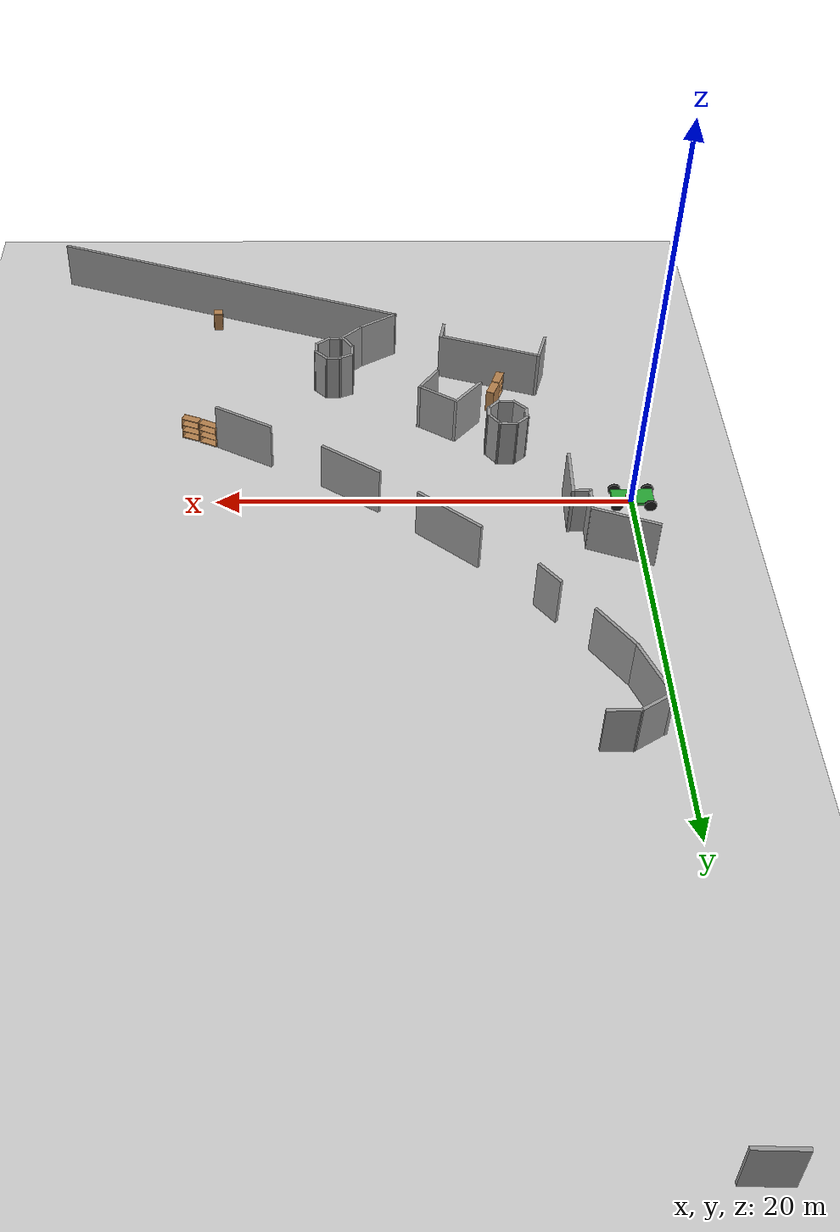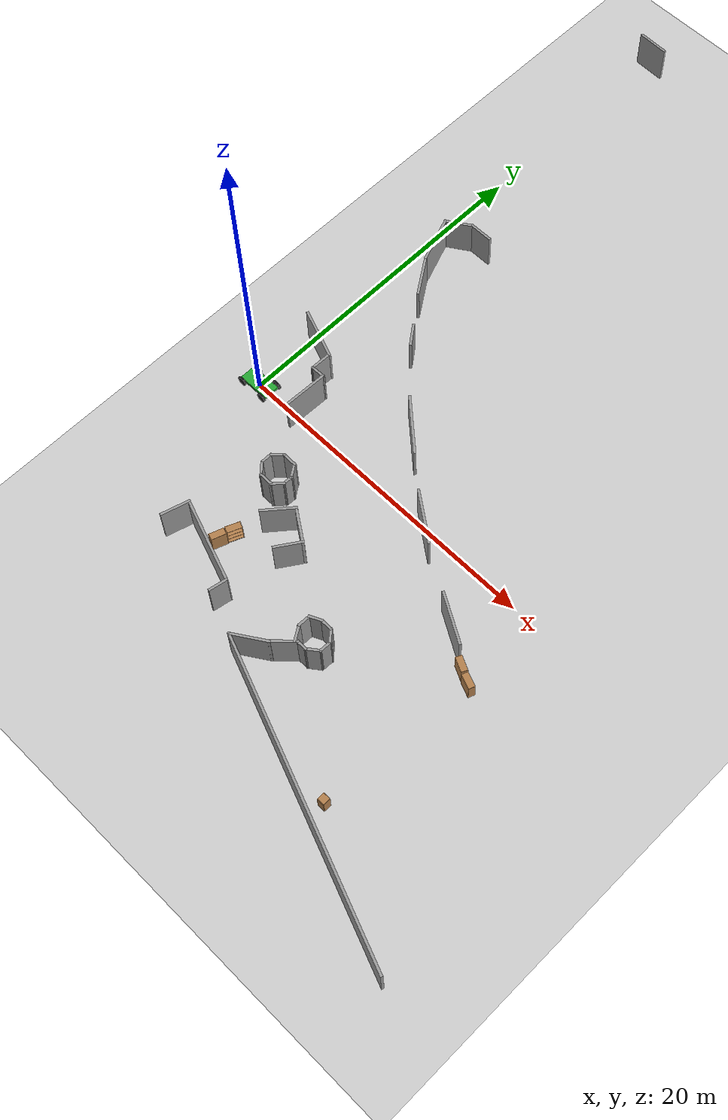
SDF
<sdf version="1.6">
 <world name="default">
  <model name="ground_plane">
   <static>1</static>
   <link name="link">
    <collision name="collision">
     <geometry><plane><normal>0 0 1</normal><size>100 100</size></plane></geometry>
     <surface><friction><ode><mu>100</mu><mu2>50</mu2></ode></friction></surface>
    </collision>
    <visual name="visual">
     <cast_shadows>0</cast_shadows>
     <geometry><plane><normal>0 0 1</normal><size>100 100</size></plane></geometry>
     <material>
      <script><uri>file://media/materials/scripts/gazebo.material</uri><name>Gazebo/Grey</name></script>
     </material>
    </visual>
   </link>
  </model>
  <model name="mall_new_reduce_size">
   <pose>-6.8092 7.5529 0 0 -0 0</pose>
   <link name="Wall_126">
    <collision name="Wall_126_Collision">
     <geometry><box><size>1.5 0.15 2.5</size></box></geometry>
     <pose>0 0 1.25 0 -0 0</pose>
    </collision>
    <visual name="Wall_126_Visual">
     <pose>0 0 1.25 0 -0 0</pose>
     <geometry><box><size>1.5 0.15 2.5</size></box></geometry>
     <material>
      <script><uri>file://media/materials/scripts/gazebo.material</uri><name>Gazebo/Grey</name></script>
      <ambient>1 1 1 1</ambient>
     </material>
     <meta><layer>0</layer></meta>
    </visual>
    <pose>9.56035 7.86068 0 0 -0 3.14159</pose>
   </link>
   <link name="Wall_127">
    <collision name="Wall_127_Collision">
     <geometry><box><size>1.79669 0.15 2.5</size></box></geometry>
     <pose>0 0 1.25 0 -0 0</pose>
    </collision>
    <visual name="Wall_127_Visual">
     <pose>0 0 1.25 0 -0 0</pose>
     <geometry><box><size>1.79669 0.15 2.5</size></box></geometry>
     <material>
      <script><uri>file://media/materials/scripts/gazebo.material</uri><name>Gazebo/Grey</name></script>
      <ambient>1 1 1 1</ambient>
     </material>
     <meta><layer>0</layer></meta>
    </visual>
    <pose>8.19253 7.41582 0 0 -0 -2.57079</pose>
   </link>
   <link name="Wall_128">
    <collision name="Wall_128_Collision">
     <geometry><box><size>3.04987 0.15 2.5</size></box></geometry>
     <pose>0 0 1.25 0 -0 0</pose>
    </collision>
    <visual name="Wall_128_Visual">
     <pose>0 0 1.25 0 -0 0</pose>
     <geometry><box><size>3.04987 0.15 2.5</size></box></geometry>
     <material>
      <script><uri>file://media/materials/scripts/gazebo.material</uri><name>Gazebo/Grey</name></script>
      <ambient>1 1 1 1</ambient>
     </material>
     <meta><layer>0</layer></meta>
    </visual>
    <pose>8.01735 5.63901 0 0 -0 -1.20574</pose>
   </link>
   <link name="Wall_129">
    <collision name="Wall_129_Collision">
     <geometry><box><size>2.67124 0.15 2.5</size></box></geometry>
     <pose>0 0 1.25 0 -0 0</pose>
    </collision>
    <visual name="Wall_129_Visual">
     <pose>0 0 1.25 0 -0 0</pose>
     <geometry><box><size>2.67124 0.15 2.5</size></box></geometry>
     <material>
      <script><uri>file://media/materials/scripts/gazebo.material</uri><name>Gazebo/Grey</name></script>
      <ambient>1 1 1 1</ambient>
     </material>
     <meta><layer>0</layer></meta>
    </visual>
    <pose>9.25128 3.23607 0 0 -0 -0.966457</pose>
   </link>
   <link name="Wall_134">
    <collision name="Wall_134_Collision">
     <geometry><box><size>1.4429 0.15 2.5</size></box></geometry>
     <pose>0 0 1.25 0 -0 0</pose>
    </collision>
    <visual name="Wall_134_Visual">
     <pose>0 0 1.25 0 -0 0</pose>
     <geometry><box><size>1.4429 0.15 2.5</size></box></geometry>
     <material>
      <script><uri>file://media/materials/scripts/gazebo.material</uri><name>Gazebo/Grey</name></script>
      <ambient>1 1 1 1</ambient>
     </material>
     <meta><layer>0</layer></meta>
    </visual>
    <pose>11.7178 -0.065856 0 0 -0 -0.919284</pose>
   </link>
   <link name="Wall_137">
    <collision name="Wall_137_Collision">
     <geometry><box><size>3.68143 0.15 2.5</size></box></geometry>
     <pose>0 0 1.25 0 -0 0</pose>
    </collision>
    <visual name="Wall_137_Visual">
     <pose>0 0 1.25 0 -0 0</pose>
     <geometry><box><size>3.68143 0.15 2.5</size></box></geometry>
     <material>
      <script><uri>file://media/materials/scripts/gazebo.material</uri><name>Gazebo/Grey</name></script>
      <ambient>1 1 1 1</ambient>
     </material>
     <meta><layer>0</layer></meta>
    </visual>
    <pose>15.8732 -4.24673 0 0 -0 -0.713439</pose>
   </link>
   <link name="Wall_140">
    <collision name="Wall_140_Collision">
     <geometry><box><size>3.35827 0.15 2.5</size></box></geometry>
     <pose>0 0 1.25 0 -0 0</pose>
    </collision>
    <visual name="Wall_140_Visual">
     <pose>0 0 1.25 0 -0 0</pose>
     <geometry><box><size>3.35827 0.15 2.5</size></box></geometry>
     <material>
      <script><uri>file://media/materials/scripts/gazebo.material</uri><name>Gazebo/Grey</name></script>
      <ambient>1 1 1 1</ambient>
     </material>
     <meta><layer>0</layer></meta>
    </visual>
    <pose>20.3327 -7.86303 0 0 -0 -0.619292</pose>
   </link>
   <link name="Wall_143">
    <collision name="Wall_143_Collision">
     <geometry><box><size>3.17972 0.15 2.5</size></box></geometry>
     <pose>0 0 1.25 0 -0 0</pose>
    </collision>
    <visual name="Wall_143_Visual">
     <pose>0 0 1.25 0 -0 0</pose>
     <geometry><box><size>3.17972 0.15 2.5</size></box></geometry>
     <material>
      <script><uri>file://media/materials/scripts/gazebo.material</uri><name>Gazebo/Grey</name></script>
      <ambient>1 1 1 1</ambient>
     </material>
     <meta><layer>0</layer></meta>
    </visual>
    <pose>25.5439 -11.078 0 0 -0 -0.516247</pose>
   </link>
   <link name="Wall_205">
    <collision name="Wall_205_Collision">
     <geometry><box><size>19.4256 0.15 2.5</size></box></geometry>
     <pose>0 0 1.25 0 -0 0</pose>
    </collision>
    <visual name="Wall_205_Visual">
     <pose>0 0 1.25 0 -0 0</pose>
     <geometry><box><size>19.4256 0.15 2.5</size></box></geometry>
     <material>
      <script><uri>file://media/materials/scripts/gazebo.material</uri><name>Gazebo/Grey</name></script>
      <ambient>1 1 1 1</ambient>
     </material>
     <meta><layer>0</layer></meta>
    </visual>
    <pose>26.9482 -23.2 0 0 -0 2.78246</pose>
   </link>
   <link name="Wall_207">
    <collision name="Wall_207_Collision">
     <geometry><box><size>2.2822 0.15 2.5</size></box></geometry>
     <pose>0 0 1.25 0 -0 0</pose>
    </collision>
    <visual name="Wall_207_Visual">
     <pose>0 0 1.25 0 -0 0</pose>
     <geometry><box><size>2.2822 0.15 2.5</size></box></geometry>
     <material>
      <script><uri>file://media/materials/scripts/gazebo.material</uri><name>Gazebo/Grey</name></script>
      <ambient>1 1 1 1</ambient>
     </material>
     <meta><layer>0</layer></meta>
    </visual>
    <pose>18.8386 -19.2246 0 0 -0 0.567895</pose>
   </link>
   <link name="Wall_208">
    <collision name="Wall_208_Collision">
     <geometry><box><size>1.61268 0.15 2.5</size></box></geometry>
     <pose>0 0 1.25 0 -0 0</pose>
    </collision>
    <visual name="Wall_208_Visual">
     <pose>0 0 1.25 0 -0 0</pose>
     <geometry><box><size>1.61268 0.15 2.5</size></box></geometry>
     <material>
      <script><uri>file://media/materials/scripts/gazebo.material</uri><name>Gazebo/Grey</name></script>
      <ambient>1 1 1 1</ambient>
     </material>
     <meta><layer>0</layer></meta>
    </visual>
    <pose>20.2619 -18.127 0 0 -0 0.770921</pose>
   </link>
   <link name="Wall_211">
    <collision name="Wall_211_Collision">
     <geometry><box><size>0.75 0.15 2.5</size></box></geometry>
     <pose>0 0 1.25 0 -0 0</pose>
    </collision>
    <visual name="Wall_211_Visual">
     <pose>0 0 1.25 0 -0 0</pose>
     <geometry><box><size>0.75 0.15 2.5</size></box></geometry>
     <material>
      <script><uri>file://media/materials/scripts/gazebo.material</uri><name>Gazebo/Grey</name></script>
      <ambient>1 1 1 1</ambient>
     </material>
     <meta><layer>0</layer></meta>
    </visual>
    <pose>21.0865 -17.6175 0 0 -0 0</pose>
   </link>
   <link name="Wall_212">
    <collision name="Wall_212_Collision">
     <geometry><box><size>0.928514 0.15 2.5</size></box></geometry>
     <pose>0 0 1.25 0 -0 0</pose>
    </collision>
    <visual name="Wall_212_Visual">
     <pose>0 0 1.25 0 -0 0</pose>
     <geometry><box><size>0.928514 0.15 2.5</size></box></geometry>
     <material>
      <script><uri>file://media/materials/scripts/gazebo.material</uri><name>Gazebo/Grey</name></script>
      <ambient>1 1 1 1</ambient>
     </material>
     <meta><layer>0</layer></meta>
    </visual>
    <pose>21.6967 -17.3823 0 0 -0 0.648482</pose>
   </link>
   <link name="Wall_213">
    <collision name="Wall_213_Collision">
     <geometry><box><size>0.794621 0.15 2.5</size></box></geometry>
     <pose>0 0 1.25 0 -0 0</pose>
    </collision>
    <visual name="Wall_213_Visual">
     <pose>0 0 1.25 0 -0 0</pose>
     <geometry><box><size>0.794621 0.15 2.5</size></box></geometry>
     <material>
      <script><uri>file://media/materials/scripts/gazebo.material</uri><name>Gazebo/Grey</name></script>
      <ambient>1 1 1 1</ambient>
     </material>
     <meta><layer>0</layer></meta>
    </visual>
    <pose>22.0259 -16.8252 0 0 -0 1.53167</pose>
   </link>
   <link name="Wall_214">
    <collision name="Wall_214_Collision">
     <geometry><box><size>0.927153 0.15 2.5</size></box></geometry>
     <pose>0 0 1.25 0 -0 0</pose>
    </collision>
    <visual name="Wall_214_Visual">
     <pose>0 0 1.25 0 -0 0</pose>
     <geometry><box><size>0.927153 0.15 2.5</size></box></geometry>
     <material>
      <script><uri>file://media/materials/scripts/gazebo.material</uri><name>Gazebo/Grey</name></script>
      <ambient>1 1 1 1</ambient>
     </material>
     <meta><layer>0</layer></meta>
    </visual>
    <pose>21.7755 -16.2107 0 0 -0 2.314</pose>
   </link>
   <link name="Wall_215">
    <collision name="Wall_215_Collision">
     <geometry><box><size>0.819343 0.15 2.5</size></box></geometry>
     <pose>0 0 1.25 0 -0 0</pose>
    </collision>
    <visual name="Wall_215_Visual">
     <pose>0 0 1.25 0 -0 0</pose>
     <geometry><box><size>0.819343 0.15 2.5</size></box></geometry>
     <material>
      <script><uri>file://media/materials/scripts/gazebo.material</uri><name>Gazebo/Grey</name></script>
      <ambient>1 1 1 1</ambient>
     </material>
     <meta><layer>0</layer></meta>
    </visual>
    <pose>21.1716 -15.9246 0 0 -0 3.14159</pose>
   </link>
   <link name="Wall_216">
    <collision name="Wall_216_Collision">
     <geometry><box><size>0.843381 0.15 2.5</size></box></geometry>
     <pose>0 0 1.25 0 -0 0</pose>
    </collision>
    <visual name="Wall_216_Visual">
     <pose>0 0 1.25 0 -0 0</pose>
     <geometry><box><size>0.843381 0.15 2.5</size></box></geometry>
     <material>
      <script><uri>file://media/materials/scripts/gazebo.material</uri><name>Gazebo/Grey</name></script>
      <ambient>1 1 1 1</ambient>
     </material>
     <meta><layer>0</layer></meta>
    </visual>
    <pose>20.5177 -16.0737 0 0 -0 -2.69705</pose>
   </link>
   <link name="Wall_217">
    <collision name="Wall_217_Collision">
     <geometry><box><size>0.856005 0.15 2.5</size></box></geometry>
     <pose>0 0 1.25 0 -0 0</pose>
    </collision>
    <visual name="Wall_217_Visual">
     <pose>0 0 1.25 0 -0 0</pose>
     <geometry><box><size>0.856005 0.15 2.5</size></box></geometry>
     <material>
      <script><uri>file://media/materials/scripts/gazebo.material</uri><name>Gazebo/Grey</name></script>
      <ambient>1 1 1 1</ambient>
     </material>
     <meta><layer>0</layer></meta>
    </visual>
    <pose>20.1932 -16.5819 0 0 -0 -1.60325</pose>
   </link>
   <link name="Wall_218">
    <collision name="Wall_218_Collision">
     <geometry><box><size>1.06985 0.15 2.5</size></box></geometry>
     <pose>0 0 1.25 0 -0 0</pose>
    </collision>
    <visual name="Wall_218_Visual">
     <pose>0 0 1.25 0 -0 0</pose>
     <geometry><box><size>1.06985 0.15 2.5</size></box></geometry>
     <material>
      <script><uri>file://media/materials/scripts/gazebo.material</uri><name>Gazebo/Grey</name></script>
      <ambient>1 1 1 1</ambient>
     </material>
     <meta><layer>0</layer></meta>
    </visual>
    <pose>20.4263 -17.318 0 0 -0 -1.01029</pose>
   </link>
   <link name="Wall_221">
    <collision name="Wall_221_Collision">
     <geometry><box><size>1.80269 0.15 2.5</size></box></geometry>
     <pose>0 0 1.25 0 -0 0</pose>
    </collision>
    <visual name="Wall_221_Visual">
     <pose>0 0 1.25 0 -0 0</pose>
     <geometry><box><size>1.80269 0.15 2.5</size></box></geometry>
     <material>
      <script><uri>file://media/materials/scripts/gazebo.material</uri><name>Gazebo/Grey</name></script>
      <ambient>1 1 1 1</ambient>
     </material>
     <meta><layer>0</layer></meta>
    </visual>
    <pose>10.4346 -16.8787 0 0 -0 1.2841</pose>
   </link>
   <link name="Wall_222">
    <collision name="Wall_222_Collision">
     <geometry><box><size>5.33695 0.15 2.5</size></box></geometry>
     <pose>0 0 1.25 0 -0 0</pose>
    </collision>
    <visual name="Wall_222_Visual">
     <pose>0 0 1.25 0 -0 0</pose>
     <geometry><box><size>5.33695 0.15 2.5</size></box></geometry>
     <material>
      <script><uri>file://media/materials/scripts/gazebo.material</uri><name>Gazebo/Grey</name></script>
      <ambient>1 1 1 1</ambient>
     </material>
     <meta><layer>0</layer></meta>
    </visual>
    <pose>13.1136 -16.9614 0 0 -0 -0.339721</pose>
   </link>
   <link name="Wall_223">
    <collision name="Wall_223_Collision">
     <geometry><box><size>1.17859 0.15 2.5</size></box></geometry>
     <pose>0 0 1.25 0 -0 0</pose>
    </collision>
    <visual name="Wall_223_Visual">
     <pose>0 0 1.25 0 -0 0</pose>
     <geometry><box><size>1.17859 0.15 2.5</size></box></geometry>
     <material>
      <script><uri>file://media/materials/scripts/gazebo.material</uri><name>Gazebo/Grey</name></script>
      <ambient>1 1 1 1</ambient>
     </material>
     <meta><layer>0</layer></meta>
    </visual>
    <pose>15.4636 -18.342 0 0 -0 -1.7571</pose>
   </link>
   <link name="Wall_226">
    <collision name="Wall_226_Collision">
     <geometry><box><size>2.09323 0.15 2.5</size></box></geometry>
     <pose>0 0 1.25 0 -0 0</pose>
    </collision>
    <visual name="Wall_226_Visual">
     <pose>0 0 1.25 0 -0 0</pose>
     <geometry><box><size>2.09323 0.15 2.5</size></box></geometry>
     <material>
      <script><uri>file://media/materials/scripts/gazebo.material</uri><name>Gazebo/Grey</name></script>
      <ambient>1 1 1 1</ambient>
     </material>
     <meta><layer>0</layer></meta>
    </visual>
    <pose>14.4531 -13.0477 0 0 -0 0.87023</pose>
   </link>
   <link name="Wall_227">
    <collision name="Wall_227_Collision">
     <geometry><box><size>2.25142 0.15 2.5</size></box></geometry>
     <pose>0 0 1.25 0 -0 0</pose>
    </collision>
    <visual name="Wall_227_Visual">
     <pose>0 0 1.25 0 -0 0</pose>
     <geometry><box><size>2.25142 0.15 2.5</size></box></geometry>
     <material>
      <script><uri>file://media/materials/scripts/gazebo.material</uri><name>Gazebo/Grey</name></script>
      <ambient>1 1 1 1</ambient>
     </material>
     <meta><layer>0</layer></meta>
    </visual>
    <pose>15.9526 -12.9004 0 0 -0 -0.589881</pose>
   </link>
   <link name="Wall_228">
    <collision name="Wall_228_Collision">
     <geometry><box><size>1.74942 0.15 2.5</size></box></geometry>
     <pose>0 0 1.25 0 -0 0</pose>
    </collision>
    <visual name="Wall_228_Visual">
     <pose>0 0 1.25 0 -0 0</pose>
     <geometry><box><size>1.74942 0.15 2.5</size></box></geometry>
     <material>
      <script><uri>file://media/materials/scripts/gazebo.material</uri><name>Gazebo/Grey</name></script>
      <ambient>1 1 1 1</ambient>
     </material>
     <meta><layer>0</layer></meta>
    </visual>
    <pose>16.3774 -14.136 0 0 -0 -2.166</pose>
   </link>
   <link name="Wall_232">
    <collision name="Wall_232_Collision">
     <geometry><box><size>0.75 0.15 2.5</size></box></geometry>
     <pose>0 0 1.25 0 -0 0</pose>
    </collision>
    <visual name="Wall_232_Visual">
     <pose>0 0 1.25 0 -0 0</pose>
     <geometry><box><size>0.75 0.15 2.5</size></box></geometry>
     <material>
      <script><uri>file://media/materials/scripts/gazebo.material</uri><name>Gazebo/Grey</name></script>
      <ambient>1 1 1 1</ambient>
     </material>
     <meta><layer>0</layer></meta>
    </visual>
    <pose>11.7121 -11.3214 0 0 -0 1.5708</pose>
   </link>
   <link name="Wall_233">
    <collision name="Wall_233_Collision">
     <geometry><box><size>0.875106 0.15 2.5</size></box></geometry>
     <pose>0 0 1.25 0 -0 0</pose>
    </collision>
    <visual name="Wall_233_Visual">
     <pose>0 0 1.25 0 -0 0</pose>
     <geometry><box><size>0.875106 0.15 2.5</size></box></geometry>
     <material>
      <script><uri>file://media/materials/scripts/gazebo.material</uri><name>Gazebo/Grey</name></script>
      <ambient>1 1 1 1</ambient>
     </material>
     <meta><layer>0</layer></meta>
    </visual>
    <pose>11.9788 -10.7757 0 0 -0 0.744506</pose>
   </link>
   <link name="Wall_234">
    <collision name="Wall_234_Collision">
     <geometry><box><size>0.968033 0.15 2.5</size></box></geometry>
     <pose>0 0 1.25 0 -0 0</pose>
    </collision>
    <visual name="Wall_234_Visual">
     <pose>0 0 1.25 0 -0 0</pose>
     <geometry><box><size>0.968033 0.15 2.5</size></box></geometry>
     <material>
      <script><uri>file://media/materials/scripts/gazebo.material</uri><name>Gazebo/Grey</name></script>
      <ambient>1 1 1 1</ambient>
     </material>
     <meta><layer>0</layer></meta>
    </visual>
    <pose>12.6628 -10.5342 0 0 -0 -0.010249</pose>
   </link>
   <link name="Wall_235">
    <collision name="Wall_235_Collision">
     <geometry><box><size>0.995867 0.15 2.5</size></box></geometry>
     <pose>0 0 1.25 0 -0 0</pose>
    </collision>
    <visual name="Wall_235_Visual">
     <pose>0 0 1.25 0 -0 0</pose>
     <geometry><box><size>0.995867 0.15 2.5</size></box></geometry>
     <material>
      <script><uri>file://media/materials/scripts/gazebo.material</uri><name>Gazebo/Grey</name></script>
      <ambient>1 1 1 1</ambient>
     </material>
     <meta><layer>0</layer></meta>
    </visual>
    <pose>13.3057 -10.8851 0 0 -0 -0.96076</pose>
   </link>
   <link name="Wall_236">
    <collision name="Wall_236_Collision">
     <geometry><box><size>0.675613 0.15 2.5</size></box></geometry>
     <pose>0 0 1.25 0 -0 0</pose>
    </collision>
    <visual name="Wall_236_Visual">
     <pose>0 0 1.25 0 -0 0</pose>
     <geometry><box><size>0.675613 0.15 2.5</size></box></geometry>
     <material>
      <script><uri>file://media/materials/scripts/gazebo.material</uri><name>Gazebo/Grey</name></script>
      <ambient>1 1 1 1</ambient>
     </material>
     <meta><layer>0</layer></meta>
    </visual>
    <pose>13.5396 -11.494 0 0 -0 -1.63464</pose>
   </link>
   <link name="Wall_237">
    <collision name="Wall_237_Collision">
     <geometry><box><size>0.890267 0.15 2.5</size></box></geometry>
     <pose>0 0 1.25 0 -0 0</pose>
    </collision>
    <visual name="Wall_237_Visual">
     <pose>0 0 1.25 0 -0 0</pose>
     <geometry><box><size>0.890267 0.15 2.5</size></box></geometry>
     <material>
      <script><uri>file://media/materials/scripts/gazebo.material</uri><name>Gazebo/Grey</name></script>
      <ambient>1 1 1 1</ambient>
     </material>
     <meta><layer>0</layer></meta>
    </visual>
    <pose>13.2722 -12.0203 0 0 -0 -2.31459</pose>
   </link>
   <link name="Wall_238">
    <collision name="Wall_238_Collision">
     <geometry><box><size>0.954271 0.15 2.5</size></box></geometry>
     <pose>0 0 1.25 0 -0 0</pose>
    </collision>
    <visual name="Wall_238_Visual">
     <pose>0 0 1.25 0 -0 0</pose>
     <geometry><box><size>0.954271 0.15 2.5</size></box></geometry>
     <material>
      <script><uri>file://media/materials/scripts/gazebo.material</uri><name>Gazebo/Grey</name></script>
      <ambient>1 1 1 1</ambient>
     </material>
     <meta><layer>0</layer></meta>
    </visual>
    <pose>12.6446 -12.2601 0 0 -0 -3.1391</pose>
   </link>
   <link name="Wall_242">
    <collision name="Wall_242_Collision">
     <geometry><box><size>0.863418 0.15 2.5</size></box></geometry>
     <pose>0 0 1.25 0 -0 0</pose>
    </collision>
    <visual name="Wall_242_Visual">
     <pose>0 0 1.25 0 -0 0</pose>
     <geometry><box><size>0.863418 0.15 2.5</size></box></geometry>
     <material>
      <script><uri>file://media/materials/scripts/gazebo.material</uri><name>Gazebo/Grey</name></script>
      <ambient>1 1 1 1</ambient>
     </material>
     <meta><layer>0</layer></meta>
    </visual>
    <pose>11.9984 -12.001 0 0 -0 2.32428</pose>
   </link>
   <link name="Wall_251">
    <collision name="Wall_251_Collision">
     <geometry><box><size>2.80823 0.15 2.5</size></box></geometry>
     <pose>0 0 1.25 0 -0 0</pose>
    </collision>
    <visual name="Wall_251_Visual">
     <pose>0 0 1.25 0 -0 0</pose>
     <geometry><box><size>2.80823 0.15 2.5</size></box></geometry>
     <material>
      <script><uri>file://media/materials/scripts/gazebo.material</uri><name>Gazebo/Grey</name></script>
      <ambient>1 1 1 1</ambient>
     </material>
     <meta><layer>0</layer></meta>
    </visual>
    <pose>10.0559 -6.84845 0 0 -0 1.53799</pose>
   </link>
   <link name="Wall_252">
    <collision name="Wall_252_Collision">
     <geometry><box><size>0.933606 0.15 2.5</size></box></geometry>
     <pose>0 0 1.25 0 -0 0</pose>
    </collision>
    <visual name="Wall_252_Visual">
     <pose>0 0 1.25 0 -0 0</pose>
     <geometry><box><size>0.933606 0.15 2.5</size></box></geometry>
     <material>
      <script><uri>file://media/materials/scripts/gazebo.material</uri><name>Gazebo/Grey</name></script>
      <ambient>1 1 1 1</ambient>
     </material>
     <meta><layer>0</layer></meta>
    </visual>
    <pose>9.70783 -5.54603 0 0 -0 -3.11272</pose>
   </link>
   <link name="Wall_253">
    <collision name="Wall_253_Collision">
     <geometry><box><size>1.38548 0.15 2.5</size></box></geometry>
     <pose>0 0 1.25 0 -0 0</pose>
    </collision>
    <visual name="Wall_253_Visual">
     <pose>0 0 1.25 0 -0 0</pose>
     <geometry><box><size>1.38548 0.15 2.5</size></box></geometry>
     <material>
      <script><uri>file://media/materials/scripts/gazebo.material</uri><name>Gazebo/Grey</name></script>
      <ambient>1 1 1 1</ambient>
     </material>
     <meta><layer>0</layer></meta>
    </visual>
    <pose>9.31734 -4.9398 0 0 -0 1.54519</pose>
   </link>
   <link name="Wall_254">
    <collision name="Wall_254_Collision">
     <geometry><box><size>3.27138 0.15 2.5</size></box></geometry>
     <pose>0 0 1.25 0 -0 0</pose>
    </collision>
    <visual name="Wall_254_Visual">
     <pose>0 0 1.25 0 -0 0</pose>
     <geometry><box><size>3.27138 0.15 2.5</size></box></geometry>
     <material>
      <script><uri>file://media/materials/scripts/gazebo.material</uri><name>Gazebo/Grey</name></script>
      <ambient>1 1 1 1</ambient>
     </material>
     <meta><layer>0</layer></meta>
    </visual>
    <pose>7.88874 -3.75366 0 0 -0 2.77875</pose>
   </link>
   <link name="Wall_97">
    <collision name="Wall_97_Collision">
     <geometry><box><size>1.97301 0.15 2.5</size></box></geometry>
     <pose>0 0 1.25 0 -0 0</pose>
    </collision>
    <visual name="Wall_97_Visual">
     <pose>0 0 1.25 0 -0 0</pose>
     <geometry><box><size>1.97301 0.15 2.5</size></box></geometry>
     <material>
      <script><uri>file://media/materials/scripts/gazebo.material</uri><name>Gazebo/Grey</name></script>
      <ambient>1 1 1 1</ambient>
     </material>
     <meta><layer>0</layer></meta>
    </visual>
    <pose>7.17748 26.0156 0 0 -0 -0.024409</pose>
   </link>
   <static>1</static>
  </model>
  <model name="car_0">
   <link name="chassis">
    <pose>0 0 0.3 0 -0 0</pose>
    <collision name="collision"><geometry><box><size>2 1 0.2</size></box></geometry></collision>
    <visual name="visual">
     <geometry><box><size>2 1 0.2</size></box></geometry>
     <material>
      <script><uri>file://media/materials/scripts/gazebo.material</uri><name>Gazebo/Green</name></script>
     </material>
    </visual>
    <inertial>
     <inertia><ixx>1</ixx><ixy>0</ixy><ixz>0</ixz><iyy>1</iyy><iyz>0</iyz><izz>1</izz></inertia>
     <mass>1</mass>
    </inertial>
   </link>
   <link name="front_left_wheel">
    <pose>0.8 0.6 0.3 -0 1.5707 1.5707</pose>
    <collision name="collision">
     <geometry><cylinder><radius>0.3</radius><length>0.1</length></cylinder></geometry>
    </collision>
    <visual name="visual">
     <geometry><cylinder><radius>0.3</radius><length>0.1</length></cylinder></geometry>
     <material>
      <script><uri>file://media/materials/scripts/gazebo.material</uri><name>Gazebo/Black</name></script>
     </material>
    </visual>
    <inertial>
     <inertia><ixx>1</ixx><ixy>0</ixy><ixz>0</ixz><iyy>1</iyy><iyz>0</iyz><izz>1</izz></inertia>
     <mass>1</mass>
    </inertial>
   </link>
   <link name="front_right_wheel">
    <pose>0.8 -0.6 0.3 -0 1.5707 1.5707</pose>
    <collision name="collision">
     <geometry><cylinder><radius>0.3</radius><length>0.1</length></cylinder></geometry>
    </collision>
    <visual name="visual">
     <geometry><cylinder><radius>0.3</radius><length>0.1</length></cylinder></geometry>
     <material>
      <script><uri>file://media/materials/scripts/gazebo.material</uri><name>Gazebo/Black</name></script>
     </material>
    </visual>
    <inertial>
     <inertia><ixx>1</ixx><ixy>0</ixy><ixz>0</ixz><iyy>1</iyy><iyz>0</iyz><izz>1</izz></inertia>
     <mass>1</mass>
    </inertial>
   </link>
   <link name="back_right_wheel">
    <pose>-0.8 -0.6 0.3 -0 1.5707 1.5707</pose>
    <collision name="collision">
     <geometry><cylinder><radius>0.3</radius><length>0.1</length></cylinder></geometry>
    </collision>
    <visual name="visual">
     <geometry><cylinder><radius>0.3</radius><length>0.1</length></cylinder></geometry>
     <material>
      <script><uri>file://media/materials/scripts/gazebo.material</uri><name>Gazebo/Black</name></script>
     </material>
    </visual>
    <inertial>
     <inertia><ixx>1</ixx><ixy>0</ixy><ixz>0</ixz><iyy>1</iyy><iyz>0</iyz><izz>1</izz></inertia>
     <mass>1</mass>
    </inertial>
   </link>
   <link name="back_left_wheel">
    <pose>-0.8 0.6 0.3 -0 1.5707 1.5707</pose>
    <collision name="collision">
     <geometry><cylinder><radius>0.3</radius><length>0.1</length></cylinder></geometry>
    </collision>
    <visual name="visual">
     <geometry><cylinder><radius>0.3</radius><length>0.1</length></cylinder></geometry>
     <material>
      <script><uri>file://media/materials/scripts/gazebo.material</uri><name>Gazebo/Black</name></script>
     </material>
    </visual>
    <inertial>
     <inertia><ixx>1</ixx><ixy>0</ixy><ixz>0</ixz><iyy>1</iyy><iyz>0</iyz><izz>1</izz></inertia>
     <mass>1</mass>
    </inertial>
   </link>
   <link name="gas_pedal">
    <pose>0.3 0.1 0.5 0 -0 0</pose>
    <collision name="collision"><geometry><box><size>0.1 0.1 0.1</size></box></geometry></collision>
    <visual name="visual">
     <geometry><box><size>0.1 0.1 0.1</size></box></geometry>
     <material>
      <script><uri>file://media/materials/scripts/gazebo.material</uri><name>Gazebo/Red</name></script>
     </material>
    </visual>
    <inertial>
     <inertia><ixx>1</ixx><ixy>0</ixy><ixz>0</ixz><iyy>1</iyy><iyz>0</iyz><izz>1</izz></inertia>
     <mass>1</mass>
    </inertial>
   </link>
   <link name="brake_pedal">
    <pose>0.3 0.25 0.5 0 -0 0</pose>
    <collision name="collision"><geometry><box><size>0.1 0.1 0.1</size></box></geometry></collision>
    <visual name="visual">
     <geometry><box><size>0.1 0.1 0.1</size></box></geometry>
     <material>
      <script><uri>file://media/materials/scripts/gazebo.material</uri><name>Gazebo/Blue</name></script>
     </material>
    </visual>
    <inertial>
     <inertia><ixx>1</ixx><ixy>0</ixy><ixz>0</ixz><iyy>1</iyy><iyz>0</iyz><izz>1</izz></inertia>
     <mass>1</mass>
    </inertial>
   </link>
   <link name="steering_wheel">
    <pose>0.3 0.2 1 0 1.5707 0</pose>
    <collision name="collision">
     <geometry><cylinder><radius>0.1</radius><length>0.01</length></cylinder></geometry>
    </collision>
    <visual name="visual">
     <geometry><cylinder><radius>0.1</radius><length>0.01</length></cylinder></geometry>
     <material>
      <script><uri>file://media/materials/scripts/gazebo.material</uri><name>Gazebo/Blue</name></script>
     </material>
    </visual>
    <inertial>
     <inertia><ixx>1</ixx><ixy>0</ixy><ixz>0</ixz><iyy>1</iyy><iyz>0</iyz><izz>1</izz></inertia>
     <mass>1</mass>
    </inertial>
   </link>
   <joint name="gas_joint" type="prismatic">
    <parent>chassis</parent>
    <child>gas_pedal</child>
    <axis>
     <xyz>1 0 0</xyz>
     <limit><lower>0</lower><upper>0.2</upper></limit>
     <use_parent_model_frame>1</use_parent_model_frame>
     <dynamics><spring_reference>0</spring_reference><spring_stiffness>0</spring_stiffness></dynamics>
    </axis>
   </joint>
   <joint name="brake_joint" type="prismatic">
    <parent>chassis</parent>
    <child>brake_pedal</child>
    <axis>
     <xyz>1 0 0</xyz>
     <limit><lower>0</lower><upper>0.2</upper></limit>
     <use_parent_model_frame>1</use_parent_model_frame>
     <dynamics><spring_reference>0</spring_reference><spring_stiffness>0</spring_stiffness></dynamics>
    </axis>
   </joint>
   <joint name="steering_joint" type="revolute">
    <parent>chassis</parent>
    <child>steering_wheel</child>
    <axis>
     <xyz>1 0 0</xyz>
     <limit><lower>-7.853</lower><upper>7.853</upper></limit>
     <use_parent_model_frame>1</use_parent_model_frame>
     <dynamics><spring_reference>0</spring_reference><spring_stiffness>0</spring_stiffness></dynamics>
    </axis>
   </joint>
   <joint name="front_left_joint" type="revolute2">
    <parent>chassis</parent>
    <child>front_left_wheel</child>
    <axis>
     <xyz>0 0 1</xyz>
     <limit><lower>-0.0500032</lower><upper>-0.0500032</upper></limit>
     <use_parent_model_frame>1</use_parent_model_frame>
     <dynamics><spring_reference>0</spring_reference><spring_stiffness>0</spring_stiffness></dynamics>
    </axis>
    <axis2>
     <xyz>0 1 0</xyz>
     <use_parent_model_frame>1</use_parent_model_frame>
     <dynamics><spring_reference>0</spring_reference><spring_stiffness>0</spring_stiffness></dynamics>
    </axis2>
    <physics><ode><limit><cfm>0</cfm><erp>0.9</erp></limit></ode></physics>
   </joint>
   <joint name="front_right_joint" type="revolute2">
    <parent>chassis</parent>
    <child>front_right_wheel</child>
    <axis>
     <xyz>0 0 1</xyz>
     <limit><lower>-0.0500032</lower><upper>-0.0500032</upper></limit>
     <use_parent_model_frame>1</use_parent_model_frame>
     <dynamics><spring_reference>0</spring_reference><spring_stiffness>0</spring_stiffness></dynamics>
    </axis>
    <axis2>
     <xyz>0 1 0</xyz>
     <use_parent_model_frame>1</use_parent_model_frame>
     <dynamics><spring_reference>0</spring_reference><spring_stiffness>0</spring_stiffness></dynamics>
    </axis2>
    <physics><ode><limit><cfm>0</cfm><erp>0.9</erp></limit></ode></physics>
   </joint>
   <joint name="back_right_joint" type="revolute2">
    <parent>chassis</parent>
    <child>back_right_wheel</child>
    <axis>
     <xyz>0 0 1</xyz>
     <limit><lower>0</lower><upper>0</upper></limit>
     <use_parent_model_frame>1</use_parent_model_frame>
     <dynamics><spring_reference>0</spring_reference><spring_stiffness>0</spring_stiffness></dynamics>
    </axis>
    <axis2>
     <xyz>0 1 0</xyz>
     <use_parent_model_frame>1</use_parent_model_frame>
     <dynamics><spring_reference>0</spring_reference><spring_stiffness>0</spring_stiffness></dynamics>
    </axis2>
    <physics><ode><limit><cfm>0</cfm><erp>0.9</erp></limit></ode></physics>
   </joint>
   <joint name="back_left_joint" type="revolute2">
    <parent>chassis</parent>
    <child>back_left_wheel</child>
    <axis>
     <xyz>0 0 1</xyz>
     <limit><lower>0</lower><upper>0</upper></limit>
     <use_parent_model_frame>1</use_parent_model_frame>
     <dynamics><spring_reference>0</spring_reference><spring_stiffness>0</spring_stiffness></dynamics>
    </axis>
    <axis2>
     <xyz>0 1 0</xyz>
     <use_parent_model_frame>1</use_parent_model_frame>
     <dynamics><spring_reference>0</spring_reference><spring_stiffness>0</spring_stiffness></dynamics>
    </axis2>
    <physics><ode><limit><cfm>0</cfm><erp>0.9</erp></limit></ode></physics>
   </joint>
   <plugin name="vehicle" filename="libVehiclePlugin.so">
    <front_left>front_left_joint</front_left>
    <front_right>front_right_joint</front_right>
    <back_left>back_left_joint</back_left>
    <back_right>back_right_joint</back_right>
    <gas>gas_joint</gas>
    <brake>brake_joint</brake>
    <steering>steering_joint</steering>
    <front_power>10</front_power>
    <rear_power>10</rear_power>
    <tire_angle_range>0.5</tire_angle_range>
    <max_speed>10</max_speed>
    <aero_load>0.1</aero_load>
   </plugin>
  </model>
  <model name="cabinet">
   <static>1</static>
   <link name="cabinet_bottom_plate">
    <inertial>
     <pose>0 0 -1 0 -0 0</pose>
     <inertia><ixx>2.05</ixx><ixy>0</ixy><ixz>0</ixz><iyy>2.05</iyy><iyz>0</iyz><izz>2.05</izz></inertia>
     <mass>25</mass>
    </inertial>
    <collision name="cabinet_bottom_plate_geom">
     <pose>0 0 0.01 0 -0 0</pose>
     <geometry><box><size>0.45 0.45 0.02</size></box></geometry>
    </collision>
    <visual name="cabinet_bottom_plate_geom_visual">
     <pose>0 0 0.01 0 -0 0</pose>
     <geometry><box><size>0.45 0.45 0.02</size></box></geometry>
     <material>
      <script><uri>file://media/materials/scripts/gazebo.material</uri><name>Gazebo/Wood</name></script>
     </material>
    </visual>
    <collision name="cabinet_bottom_plate_geom_cabinet_back_plate">
     <pose>0.235 0 0.51 0 -0 0</pose>
     <geometry><box><size>0.02 0.45 1.02</size></box></geometry>
    </collision>
    <visual name="cabinet_bottom_plate_geom_cabinet_back_plate_visual">
     <pose>0.235 0 0.51 0 -0 0</pose>
     <geometry><box><size>0.02 0.45 1.02</size></box></geometry>
     <material>
      <script><uri>file://media/materials/scripts/gazebo.material</uri><name>Gazebo/Wood</name></script>
     </material>
    </visual>
    <collision name="cabinet_bottom_plate_geom_cabinet_left_plate">
     <pose>0 0.235 0.51 0 -0 0</pose>
     <geometry><box><size>0.45 0.02 1.02</size></box></geometry>
    </collision>
    <visual name="cabinet_bottom_plate_geom_cabinet_left_plate_visual">
     <pose>0 0.235 0.51 0 -0 0</pose>
     <geometry><box><size>0.45 0.02 1.02</size></box></geometry>
     <material>
      <script><uri>file://media/materials/scripts/gazebo.material</uri><name>Gazebo/Wood</name></script>
     </material>
    </visual>
    <collision name="cabinet_bottom_plate_geom_cabinet_middle_plate">
     <pose>0 0 0.51 0 -0 0</pose>
     <geometry><box><size>0.45 0.45 0.02</size></box></geometry>
    </collision>
    <visual name="cabinet_bottom_plate_geom_cabinet_middle_plate_visual">
     <pose>0 0 0.51 0 -0 0</pose>
     <geometry><box><size>0.45 0.45 0.02</size></box></geometry>
     <material>
      <script><uri>file://media/materials/scripts/gazebo.material</uri><name>Gazebo/Wood</name></script>
     </material>
    </visual>
    <collision name="cabinet_bottom_plate_geom_cabinet_right_plate">
     <pose>0 -0.235 0.51 0 -0 0</pose>
     <geometry><box><size>0.45 0.02 1.02</size></box></geometry>
    </collision>
    <visual name="cabinet_bottom_plate_geom_cabinet_right_plate_visual">
     <pose>0 -0.235 0.51 0 -0 0</pose>
     <geometry><box><size>0.45 0.02 1.02</size></box></geometry>
     <material>
      <script><uri>file://media/materials/scripts/gazebo.material</uri><name>Gazebo/Wood</name></script>
     </material>
    </visual>
    <collision name="cabinet_bottom_plate_geom_cabinet_top_plate">
     <pose>0 0 1.01 0 -0 0</pose>
     <geometry><box><size>0.45 0.45 0.02</size></box></geometry>
    </collision>
    <visual name="cabinet_bottom_plate_geom_cabinet_top_plate_visual">
     <pose>0 0 1.01 0 -0 0</pose>
     <geometry><box><size>0.45 0.45 0.02</size></box></geometry>
     <material>
      <script><uri>file://media/materials/scripts/gazebo.material</uri><name>Gazebo/Wood</name></script>
     </material>
    </visual>
   </link>
   <pose>20.618 -14.6754 0 0 -0 0</pose>
  </model>
  <model name="bookshelf_18">
   <static>1</static>
   <link name="link">
    <inertial><mass>1</mass></inertial>
    <collision name="back">
     <pose>0 0.005 0.6 0 -0 0</pose>
     <geometry><box><size>0.9 0.01 1.2</size></box></geometry>
    </collision>
    <visual name="visual1">
     <pose>0 0.005 0.6 0 -0 0</pose>
     <geometry><box><size>0.9 0.01 1.2</size></box></geometry>
     <material>
      <script><uri>file://media/materials/scripts/gazebo.material</uri><name>Gazebo/Wood</name></script>
     </material>
    </visual>
    <collision name="left_side">
     <pose>0.45 -0.195 0.6 0 -0 0</pose>
     <geometry><box><size>0.02 0.4 1.2</size></box></geometry>
    </collision>
    <visual name="visual2">
     <pose>0.45 -0.195 0.6 0 -0 0</pose>
     <geometry><box><size>0.02 0.4 1.2</size></box></geometry>
     <material>
      <script><uri>file://media/materials/scripts/gazebo.material</uri><name>Gazebo/Wood</name></script>
     </material>
    </visual>
    <collision name="right_side">
     <pose>-0.45 -0.195 0.6 0 -0 0</pose>
     <geometry><box><size>0.02 0.4 1.2</size></box></geometry>
    </collision>
    <visual name="visual3">
     <pose>-0.45 -0.195 0.6 0 -0 0</pose>
     <geometry><box><size>0.02 0.4 1.2</size></box></geometry>
     <material>
      <script><uri>file://media/materials/scripts/gazebo.material</uri><name>Gazebo/Wood</name></script>
     </material>
    </visual>
    <collision name="bottom">
     <pose>0 -0.195 0.03 0 -0 0</pose>
     <geometry><box><size>0.88 0.4 0.06</size></box></geometry>
    </collision>
    <visual name="visual4">
     <pose>0 -0.195 0.03 0 -0 0</pose>
     <geometry><box><size>0.88 0.4 0.06</size></box></geometry>
     <material>
      <script><uri>file://media/materials/scripts/gazebo.material</uri><name>Gazebo/Wood</name></script>
     </material>
    </visual>
    <collision name="top">
     <pose>0 -0.195 1.19 0 -0 0</pose>
     <geometry><box><size>0.88 0.4 0.02</size></box></geometry>
    </collision>
    <visual name="visual5">
     <pose>0 -0.195 1.19 0 -0 0</pose>
     <geometry><box><size>0.88 0.4 0.02</size></box></geometry>
     <material>
      <script><uri>file://media/materials/scripts/gazebo.material</uri><name>Gazebo/Wood</name></script>
     </material>
    </visual>
    <collision name="low_shelf">
     <pose>0 -0.195 0.43 0 -0 0</pose>
     <geometry><box><size>0.88 0.4 0.02</size></box></geometry>
    </collision>
    <visual name="visual6">
     <pose>0 -0.195 0.43 0 -0 0</pose>
     <geometry><box><size>0.88 0.4 0.02</size></box></geometry>
     <material>
      <script><uri>file://media/materials/scripts/gazebo.material</uri><name>Gazebo/Wood</name></script>
     </material>
    </visual>
    <collision name="high_shelf">
     <pose>0 -0.195 0.8 0 -0 0</pose>
     <geometry><box><size>0.88 0.4 0.02</size></box></geometry>
    </collision>
    <visual name="visual7">
     <pose>0 -0.195 0.8 0 -0 0</pose>
     <geometry><box><size>0.88 0.4 0.02</size></box></geometry>
     <material>
      <script><uri>file://media/materials/scripts/gazebo.material</uri><name>Gazebo/Wood</name></script>
     </material>
    </visual>
   </link>
   <pose>6.03825 -8.52417 0 0 0 -1.91613</pose>
  </model>
  <model name="bookshelf_19">
   <static>1</static>
   <link name="link">
    <inertial><mass>1</mass></inertial>
    <collision name="back">
     <pose>0 0.005 0.6 0 -0 0</pose>
     <geometry><box><size>0.9 0.01 1.2</size></box></geometry>
    </collision>
    <visual name="visual1">
     <pose>0 0.005 0.6 0 -0 0</pose>
     <geometry><box><size>0.9 0.01 1.2</size></box></geometry>
     <material>
      <script><uri>file://media/materials/scripts/gazebo.material</uri><name>Gazebo/Wood</name></script>
     </material>
    </visual>
    <collision name="left_side">
     <pose>0.45 -0.195 0.6 0 -0 0</pose>
     <geometry><box><size>0.02 0.4 1.2</size></box></geometry>
    </collision>
    <visual name="visual2">
     <pose>0.45 -0.195 0.6 0 -0 0</pose>
     <geometry><box><size>0.02 0.4 1.2</size></box></geometry>
     <material>
      <script><uri>file://media/materials/scripts/gazebo.material</uri><name>Gazebo/Wood</name></script>
     </material>
    </visual>
    <collision name="right_side">
     <pose>-0.45 -0.195 0.6 0 -0 0</pose>
     <geometry><box><size>0.02 0.4 1.2</size></box></geometry>
    </collision>
    <visual name="visual3">
     <pose>-0.45 -0.195 0.6 0 -0 0</pose>
     <geometry><box><size>0.02 0.4 1.2</size></box></geometry>
     <material>
      <script><uri>file://media/materials/scripts/gazebo.material</uri><name>Gazebo/Wood</name></script>
     </material>
    </visual>
    <collision name="bottom">
     <pose>0 -0.195 0.03 0 -0 0</pose>
     <geometry><box><size>0.88 0.4 0.06</size></box></geometry>
    </collision>
    <visual name="visual4">
     <pose>0 -0.195 0.03 0 -0 0</pose>
     <geometry><box><size>0.88 0.4 0.06</size></box></geometry>
     <material>
      <script><uri>file://media/materials/scripts/gazebo.material</uri><name>Gazebo/Wood</name></script>
     </material>
    </visual>
    <collision name="top">
     <pose>0 -0.195 1.19 0 -0 0</pose>
     <geometry><box><size>0.88 0.4 0.02</size></box></geometry>
    </collision>
    <visual name="visual5">
     <pose>0 -0.195 1.19 0 -0 0</pose>
     <geometry><box><size>0.88 0.4 0.02</size></box></geometry>
     <material>
      <script><uri>file://media/materials/scripts/gazebo.material</uri><name>Gazebo/Wood</name></script>
     </material>
    </visual>
    <collision name="low_shelf">
     <pose>0 -0.195 0.43 0 -0 0</pose>
     <geometry><box><size>0.88 0.4 0.02</size></box></geometry>
    </collision>
    <visual name="visual6">
     <pose>0 -0.195 0.43 0 -0 0</pose>
     <geometry><box><size>0.88 0.4 0.02</size></box></geometry>
     <material>
      <script><uri>file://media/materials/scripts/gazebo.material</uri><name>Gazebo/Wood</name></script>
     </material>
    </visual>
    <collision name="high_shelf">
     <pose>0 -0.195 0.8 0 -0 0</pose>
     <geometry><box><size>0.88 0.4 0.02</size></box></geometry>
    </collision>
    <visual name="visual7">
     <pose>0 -0.195 0.8 0 -0 0</pose>
     <geometry><box><size>0.88 0.4 0.02</size></box></geometry>
     <material>
      <script><uri>file://media/materials/scripts/gazebo.material</uri><name>Gazebo/Wood</name></script>
     </material>
    </visual>
   </link>
   <pose>5.99662 -7.49828 0 0 -0 1.16493</pose>
  </model>
  <model name="bookshelf_22">
   <static>1</static>
   <link name="link">
    <inertial><mass>1</mass></inertial>
    <collision name="back">
     <pose>0 0.005 0.6 0 -0 0</pose>
     <geometry><box><size>0.9 0.01 1.2</size></box></geometry>
    </collision>
    <visual name="visual1">
     <pose>0 0.005 0.6 0 -0 0</pose>
     <geometry><box><size>0.9 0.01 1.2</size></box></geometry>
     <material>
      <script><uri>file://media/materials/scripts/gazebo.material</uri><name>Gazebo/Wood</name></script>
     </material>
    </visual>
    <collision name="left_side">
     <pose>0.45 -0.195 0.6 0 -0 0</pose>
     <geometry><box><size>0.02 0.4 1.2</size></box></geometry>
    </collision>
    <visual name="visual2">
     <pose>0.45 -0.195 0.6 0 -0 0</pose>
     <geometry><box><size>0.02 0.4 1.2</size></box></geometry>
     <material>
      <script><uri>file://media/materials/scripts/gazebo.material</uri><name>Gazebo/Wood</name></script>
     </material>
    </visual>
    <collision name="right_side">
     <pose>-0.45 -0.195 0.6 0 -0 0</pose>
     <geometry><box><size>0.02 0.4 1.2</size></box></geometry>
    </collision>
    <visual name="visual3">
     <pose>-0.45 -0.195 0.6 0 -0 0</pose>
     <geometry><box><size>0.02 0.4 1.2</size></box></geometry>
     <material>
      <script><uri>file://media/materials/scripts/gazebo.material</uri><name>Gazebo/Wood</name></script>
     </material>
    </visual>
    <collision name="bottom">
     <pose>0 -0.195 0.03 0 -0 0</pose>
     <geometry><box><size>0.88 0.4 0.06</size></box></geometry>
    </collision>
    <visual name="visual4">
     <pose>0 -0.195 0.03 0 -0 0</pose>
     <geometry><box><size>0.88 0.4 0.06</size></box></geometry>
     <material>
      <script><uri>file://media/materials/scripts/gazebo.material</uri><name>Gazebo/Wood</name></script>
     </material>
    </visual>
    <collision name="top">
     <pose>0 -0.195 1.19 0 -0 0</pose>
     <geometry><box><size>0.88 0.4 0.02</size></box></geometry>
    </collision>
    <visual name="visual5">
     <pose>0 -0.195 1.19 0 -0 0</pose>
     <geometry><box><size>0.88 0.4 0.02</size></box></geometry>
     <material>
      <script><uri>file://media/materials/scripts/gazebo.material</uri><name>Gazebo/Wood</name></script>
     </material>
    </visual>
    <collision name="low_shelf">
     <pose>0 -0.195 0.43 0 -0 0</pose>
     <geometry><box><size>0.88 0.4 0.02</size></box></geometry>
    </collision>
    <visual name="visual6">
     <pose>0 -0.195 0.43 0 -0 0</pose>
     <geometry><box><size>0.88 0.4 0.02</size></box></geometry>
     <material>
      <script><uri>file://media/materials/scripts/gazebo.material</uri><name>Gazebo/Wood</name></script>
     </material>
    </visual>
    <collision name="high_shelf">
     <pose>0 -0.195 0.8 0 -0 0</pose>
     <geometry><box><size>0.88 0.4 0.02</size></box></geometry>
    </collision>
    <visual name="visual7">
     <pose>0 -0.195 0.8 0 -0 0</pose>
     <geometry><box><size>0.88 0.4 0.02</size></box></geometry>
     <material>
      <script><uri>file://media/materials/scripts/gazebo.material</uri><name>Gazebo/Wood</name></script>
     </material>
    </visual>
   </link>
   <pose>20.4509 -4.78682 0 0 -0 2.69417</pose>
  </model>
  <model name="bookshelf_23">
   <static>1</static>
   <link name="link">
    <inertial><mass>1</mass></inertial>
    <collision name="back">
     <pose>0 0.005 0.6 0 -0 0</pose>
     <geometry><box><size>0.9 0.01 1.2</size></box></geometry>
    </collision>
    <visual name="visual1">
     <pose>0 0.005 0.6 0 -0 0</pose>
     <geometry><box><size>0.9 0.01 1.2</size></box></geometry>
     <material>
      <script><uri>file://media/materials/scripts/gazebo.material</uri><name>Gazebo/Wood</name></script>
     </material>
    </visual>
    <collision name="left_side">
     <pose>0.45 -0.195 0.6 0 -0 0</pose>
     <geometry><box><size>0.02 0.4 1.2</size></box></geometry>
    </collision>
    <visual name="visual2">
     <pose>0.45 -0.195 0.6 0 -0 0</pose>
     <geometry><box><size>0.02 0.4 1.2</size></box></geometry>
     <material>
      <script><uri>file://media/materials/scripts/gazebo.material</uri><name>Gazebo/Wood</name></script>
     </material>
    </visual>
    <collision name="right_side">
     <pose>-0.45 -0.195 0.6 0 -0 0</pose>
     <geometry><box><size>0.02 0.4 1.2</size></box></geometry>
    </collision>
    <visual name="visual3">
     <pose>-0.45 -0.195 0.6 0 -0 0</pose>
     <geometry><box><size>0.02 0.4 1.2</size></box></geometry>
     <material>
      <script><uri>file://media/materials/scripts/gazebo.material</uri><name>Gazebo/Wood</name></script>
     </material>
    </visual>
    <collision name="bottom">
     <pose>0 -0.195 0.03 0 -0 0</pose>
     <geometry><box><size>0.88 0.4 0.06</size></box></geometry>
    </collision>
    <visual name="visual4">
     <pose>0 -0.195 0.03 0 -0 0</pose>
     <geometry><box><size>0.88 0.4 0.06</size></box></geometry>
     <material>
      <script><uri>file://media/materials/scripts/gazebo.material</uri><name>Gazebo/Wood</name></script>
     </material>
    </visual>
    <collision name="top">
     <pose>0 -0.195 1.19 0 -0 0</pose>
     <geometry><box><size>0.88 0.4 0.02</size></box></geometry>
    </collision>
    <visual name="visual5">
     <pose>0 -0.195 1.19 0 -0 0</pose>
     <geometry><box><size>0.88 0.4 0.02</size></box></geometry>
     <material>
      <script><uri>file://media/materials/scripts/gazebo.material</uri><name>Gazebo/Wood</name></script>
     </material>
    </visual>
    <collision name="low_shelf">
     <pose>0 -0.195 0.43 0 -0 0</pose>
     <geometry><box><size>0.88 0.4 0.02</size></box></geometry>
    </collision>
    <visual name="visual6">
     <pose>0 -0.195 0.43 0 -0 0</pose>
     <geometry><box><size>0.88 0.4 0.02</size></box></geometry>
     <material>
      <script><uri>file://media/materials/scripts/gazebo.material</uri><name>Gazebo/Wood</name></script>
     </material>
    </visual>
    <collision name="high_shelf">
     <pose>0 -0.195 0.8 0 -0 0</pose>
     <geometry><box><size>0.88 0.4 0.02</size></box></geometry>
    </collision>
    <visual name="visual7">
     <pose>0 -0.195 0.8 0 -0 0</pose>
     <geometry><box><size>0.88 0.4 0.02</size></box></geometry>
     <material>
      <script><uri>file://media/materials/scripts/gazebo.material</uri><name>Gazebo/Wood</name></script>
     </material>
    </visual>
   </link>
   <pose>21.3634 -5.22 0 0 -0 2.76583</pose>
  </model>
 </world>
</sdf>
